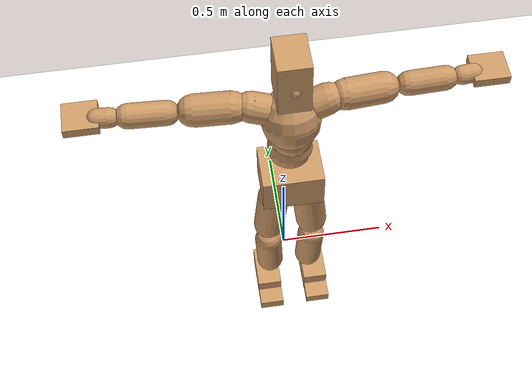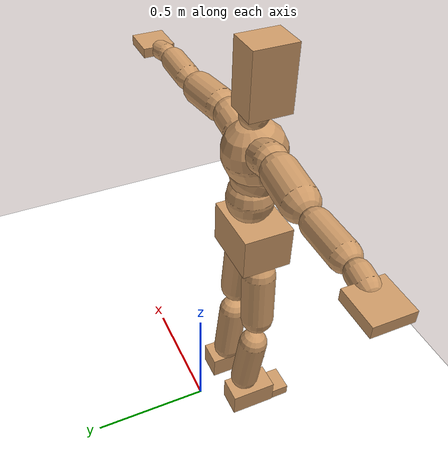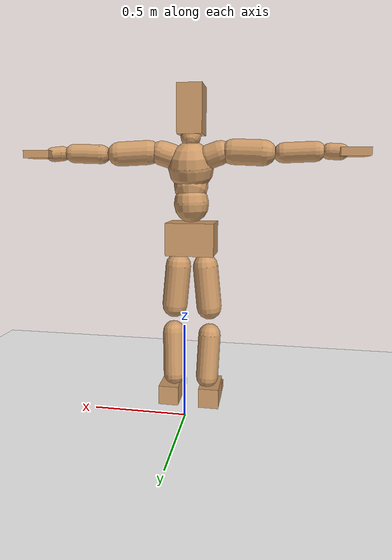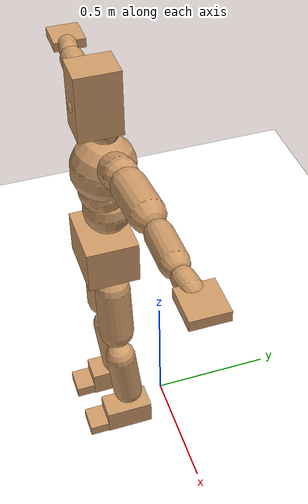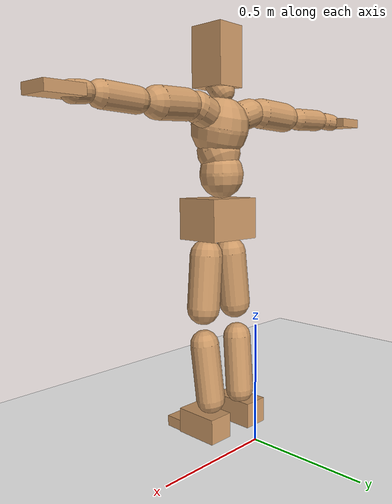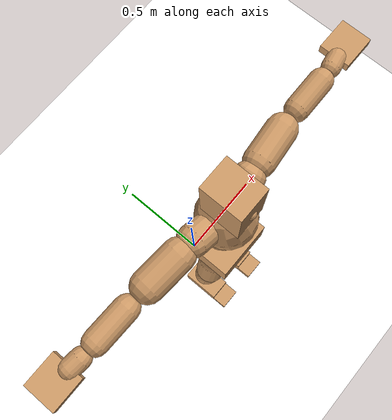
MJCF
<mujoco model="humanoid">
  <option integrator="implicitfast" />

  <visual>
    <global offwidth="1280" offheight="960" />
    <headlight active="1" ambient="0.34 0.34 0.34" diffuse="0.5 0.5 0.5" />
  </visual>

  <default>
    <joint damping="2" stiffness="2" armature="0.01" limited="true" solimplimit="0 .99 .01" />
    <geom condim="1" friction="0.7 0.005 0.0001" solimp=".99 .99 .003" solref="0.015 1" margin="0.001" rgba="0.8 0.6 .4 1" />
    <default class="smplcontact">
      <geom condim="3" friction="1. 0.005 0.0001" solref="0.015 1" solimp="0.98 0.98 0.001" priority="1" />
    </default>
    <default class="stiff_medium">
      <joint stiffness="10" />
    </default>
    <default class="stiff_medium_higher">
      <joint stiffness="50" />
    </default>
    <default class="stiff_high">
      <joint stiffness="100" />
    </default>
  </default>

  <asset>
    <texture type="skybox" builtin="gradient" rgb1="0.99 0.99 0.99" rgb2="0.608 0.828 0.892" width="100" />
    <texture builtin="flat" height="1278" mark="cross" markrgb="1 1 1" name="texgeom" random="0.01" rgb1="0.8 0.6 0.4" rgb2="0.8 0.6 0.4" type="cube" width="127" />
    <texture name="texplane" type="2d" builtin="checker" markrgb="1 1 1" rgb1="0.756 0.772 0.76" rgb2="0.6 0.6 0.6" width="100" height="100" />
    <material name="MatPlane" reflectance="0.5" texture="texplane" texrepeat="1 1" texuniform="true" />
    <material name="geom" texture="texgeom" texuniform="true" />
  </asset>

  <worldbody>
    <light name="tracking_light" pos="0 0 7" dir="0 0 -1" directional="true" cutoff="100" exponent="1" diffuse="1 1 1" specular="0.1 0.1 0.1" mode="trackcom" />
    <camera name="back" pos="0 3 2.4" xyaxes="-1 0 0 0 -1 2" mode="trackcom" />
    <camera name="side" pos="-3 0 2.4" xyaxes="0 -1 0 1 0 2" mode="trackcom" />
    <camera name="front_side" pos="-2.8 -2.8 0.8" xyaxes="0.5 -0.5 0 0.1 0.1 1" mode="trackcom" />
    <geom condim="3" name="floor" pos="0 0 0" rgba="1 1 1 1" size="100 100 .2" type="plane" material="MatPlane" />
    <body name="Pelvis" pos="-0.0018 -0.2233 0.943548" euler="90 0 0">
      <site name="Pelvis" size="0.01" />
      <freejoint name="Pelvis" />
      <geom type="box" pos="-0.0000 -0.0121 -0.0055" size="0.130676 0.0882584 0.101461" quat="1.0000 0.0000 0.0000 0.0000" density="3165.830099" name="Pelvis" />
      <body name="L_Hip" pos="0.0695 -0.0914 -0.0068">
        <joint name="L_Hip_x" type="hinge" pos="0 0 0" axis="1 0 0" stiffness="10" range="-160.0 22.92" class="stiff_medium" damping="15" />
        <joint name="L_Hip_y" type="hinge" pos="0 0 0" axis="0 1 0" stiffness="10" range="-70.0 70.0" class="stiff_medium" damping="10" />
        <joint name="L_Hip_z" type="hinge" pos="0 0 0" axis="0 0 1" stiffness="10" range="-28.65 90.0" class="stiff_medium" damping="10" />
        <geom type="capsule" density="2040.816327" fromto="0.0069 -0.075 -0.0009 0.0274 -0.3002 -0.0036" size="0.0703107" name="L_Hip" />
        <body name="L_Knee" pos="0.0343 -0.3752 -0.0045">
          <joint name="L_Knee_x" type="hinge" pos="0 0 0" axis="1 0 0" range="-5.16 171.89" damping="8" />
          <joint name="L_Knee_y" type="hinge" pos="0 0 0" axis="0 1 0" range="-4.58 6.88" damping="8" />
          <joint name="L_Knee_z" type="hinge" pos="0 0 0" axis="0 0 1" range="-6.88 4.58" damping="8" />
          <geom type="capsule" density="1234.567901" fromto="-0.0027 -0.0796 -0.0087 -0.0109 -0.3184 -0.035" size="0.0618505" name="L_Knee" />
          <body name="L_Ankle" pos="-0.0136 -0.398 -0.0437">
            <joint name="L_Ankle_x" type="hinge" pos="0 0 0" axis="1 0 0" range="-45.84 45.84" class="stiff_medium" damping="6" />
            <joint name="L_Ankle_y" type="hinge" pos="0 0 0" axis="0 1 0" range="-74.48 22.92" class="stiff_medium" damping="3" />
            <joint name="L_Ankle_z" type="hinge" pos="0 0 0" axis="0 0 1" range="-4.58 4.58" class="stiff_medium" damping="6" />
            <geom type="box" pos="0.0233 -0.0239 0.0242" size="0.0552196 0.0530474 0.0971773" quat="1.0000 0.0000 0.0000 0.0000" density="449.071558" name="L_Ankle" class="smplcontact" />
            <body name="L_Toe" pos="0.0264 -0.0558 0.1193">
              <joint name="L_Toe_x" type="hinge" pos="0 0 0" axis="1 0 0" range="-91.67 22.92" />
              <joint name="L_Toe_y" type="hinge" pos="0 0 0" axis="0 1 0" range="-4.58 4.58" />
              <joint name="L_Toe_z" type="hinge" pos="0 0 0" axis="0 0 1" range="-4.58 4.58" />
              <geom type="box" pos="-0.003 0.0055 0.0248" size="0.054648 0.0228653 0.0567058" quat="1.0000 0.0000 0.0000 0.0000" density="423.206892" name="L_Toe" class="smplcontact" />
            </body>
          </body>
        </body>
      </body>
      <body name="R_Hip" pos="-0.0677 -0.0905 -0.0043">
        <joint name="R_Hip_x" type="hinge" pos="0 0 0" axis="1 0 0" stiffness="10" range="-160.0 22.92" class="stiff_medium" damping="15" />
        <joint name="R_Hip_y" type="hinge" pos="0 0 0" axis="0 1 0" stiffness="10" range="-70.0 70.0" class="stiff_medium" damping="10" />
        <joint name="R_Hip_z" type="hinge" pos="0 0 0" axis="0 0 1" stiffness="10" range="-90.0 28.65" class="stiff_medium" damping="10" />
        <geom type="capsule" density="2040.816327" fromto="-0.0077 -0.0765 -0.0018 -0.0306 -0.3061 -0.0071" size="0.0692817" name="R_Hip" />
        <body name="R_Knee" pos="-0.0383 -0.3826 -0.0089">
          <joint name="R_Knee_x" type="hinge" pos="0 0 0" axis="1 0 0" range="-5.16 171.89" damping="8" />
          <joint name="R_Knee_y" type="hinge" pos="0 0 0" axis="0 1 0" range="-6.88 4.58" damping="8" />
          <joint name="R_Knee_z" type="hinge" pos="0 0 0" axis="0 0 1" range="-4.58 6.88" damping="8" />
          <geom type="capsule" density="1234.567901" fromto="0.0032 -0.0797 -0.0085 0.0126 -0.3187 -0.0338" size="0.0618505" name="R_Knee" />
          <body name="R_Ankle" pos="0.0158 -0.3984 -0.0423">
            <joint name="R_Ankle_x" type="hinge" pos="0 0 0" axis="1 0 0" range="-45.84 45.84" class="stiff_medium" damping="6" />
            <joint name="R_Ankle_y" type="hinge" pos="0 0 0" axis="0 1 0" range="-22.92 74.48" class="stiff_medium" damping="3" />
            <joint name="R_Ankle_z" type="hinge" pos="0 0 0" axis="0 0 1" range="-4.58 4.58" class="stiff_medium" damping="6" />
            <geom type="box" pos="-0.0212 -0.0174 0.0256" size="0.0552196 0.054648 0.0988922" quat="1.0000 0.0000 0.0000 0.0000" density="434.700981" name="R_Ankle" class="smplcontact" />
            <body name="R_Toe" pos="-0.0254 -0.0481 0.1233">
              <joint name="R_Toe_x" type="hinge" pos="0 0 0" axis="1 0 0" range="-91.67 22.92" />
              <joint name="R_Toe_y" type="hinge" pos="0 0 0" axis="0 1 0" range="-4.58 4.58" />
              <joint name="R_Toe_z" type="hinge" pos="0 0 0" axis="0 0 1" range="-4.58 4.58" />
              <geom type="box" pos="0.0042 0.0045 0.0227" size="0.0547623 0.0246945 0.0563628" quat="1.0000 0.0000 0.0000 0.0000" density="407.384095" name="R_Toe" class="smplcontact" />
            </body>
          </body>
        </body>
      </body>
      <body name="Torso" pos="-0.0025 0.109 -0.0267">
        <joint name="Torso_x" type="hinge" pos="0 0 0" axis="1 0 0" range="-25.78 57.3" class="stiff_medium" damping="15" />
        <joint name="Torso_y" type="hinge" pos="0 0 0" axis="0 1 0" range="-57.3 57.3" class="stiff_high" damping="20" />
        <joint name="Torso_z" type="hinge" pos="0 0 0" axis="0 0 1" range="-34.38 34.38" class="stiff_high" damping="20" />
        <geom type="capsule" density="2040.816327" fromto="0.0025 0.0608 0.0005 0.003 0.0743 0.0006" size="0.0940038" name="Torso" />
        <body name="Spine" pos="0.0055 0.1352 0.0011">
          <joint name="Spine_x" type="hinge" pos="0 0 0" axis="1 0 0" stiffness="10" range="-25.78 57.3" class="stiff_medium" damping="15" />
          <joint name="Spine_y" type="hinge" pos="0 0 0" axis="0 1 0" stiffness="10" range="-57.3 57.3" class="stiff_high" damping="8" />
          <joint name="Spine_z" type="hinge" pos="0 0 0" axis="0 0 1" stiffness="20" range="-34.38 34.38" class="stiff_high" damping="12" />
          <geom type="capsule" density="2040.816327" fromto="0.0007 0.0238 0.0114 0.0008 0.0291 0.014" size="0.0922924" name="Spine" />
          <body name="Chest" pos="0.0015 0.0529 0.0254">
            <joint name="Chest_x" type="hinge" pos="0 0 0" axis="1 0 0" stiffness="10" range="-25.78 57.3" class="stiff_medium" damping="15" />
            <joint name="Chest_y" type="hinge" pos="0 0 0" axis="0 1 0" stiffness="10" range="-57.3 57.3" class="stiff_high" damping="8" />
            <joint name="Chest_z" type="hinge" pos="0 0 0" axis="0 0 1" stiffness="20" range="-34.38 34.38" class="stiff_high" damping="12" />
            <geom type="capsule" density="2040.816327" fromto="-0.0009 0.0682 -0.0173 -0.001 0.0833 -0.0212" size="0.122486" name="Chest" />
            <body name="Neck" pos="-0.0028 0.2139 -0.0429">
              <joint name="Neck_x" type="hinge" pos="0 0 0" axis="1 0 0" range="-28.65 57.3" class="stiff_medium_higher" damping="10" />
              <joint name="Neck_y" type="hinge" pos="0 0 0" axis="0 1 0" range="-40.11 40.11" class="stiff_medium_higher" damping="10" />
              <joint name="Neck_z" type="hinge" pos="0 0 0" axis="0 0 1" range="-40.11 40.11" class="stiff_medium_higher" damping="10" />
              <geom type="capsule" density="1000" fromto="0.001 0.013 0.0103 0.0041 0.052 0.0411" size="0.0532973" name="Neck" />
              <body name="Head" pos="0.0052 0.065 0.0513">
                <joint name="Head_x" type="hinge" pos="0 0 0" axis="1 0 0" range="-28.65 57.3" class="stiff_medium_higher" damping="2" />
                <joint name="Head_y" type="hinge" pos="0 0 0" axis="0 1 0" range="-40.11 40.11" class="stiff_medium_higher" damping="2" />
                <joint name="Head_z" type="hinge" pos="0 0 0" axis="0 0 1" range="-40.11 40.11" class="stiff_medium_higher" damping="2" />
                <geom type="box" pos="-0.0042 0.0876 -0.0116" size="0.0662577 0.126174 0.0830955" quat="1.0000 0.0000 0.0000 0.0000" density="1018.069894" name="Head" />
                <geom type="capsule" name="nose" size="0.0218672 0.0109336" pos="0 0.07 0.05" quat="1 0 0 0" mass="0" contype="0" conaffinity="0" />
              </body>
            </body>
            <body name="L_Thorax" pos="0.0788 0.1217 -0.0341">
              <joint name="L_Thorax_x" type="hinge" pos="0 0 0" axis="1 0 0" range="-10.89 4.58" class="stiff_medium_higher" damping="20" />
              <joint name="L_Thorax_y" type="hinge" pos="0 0 0" axis="0 1 0" range="-28.65 17.19" class="stiff_medium_higher" damping="20" />
              <joint name="L_Thorax_z" type="hinge" pos="0 0 0" axis="0 0 1" range="-31.51 40.11" class="stiff_medium_higher" damping="20" />
              <geom type="capsule" density="1000" fromto="0.0182 0.0061 -0.0018 0.0728 0.0244 -0.0071" size="0.065125" name="L_Thorax" />
              <body name="L_Shoulder" pos="0.091 0.0305 -0.0089">
                <joint name="L_Shoulder_x" type="hinge" pos="0 0 0" axis="1 0 0" range="-97.4 97.4" class="stiff_medium" damping="6" />
                <joint name="L_Shoulder_y" type="hinge" pos="0 0 0" axis="0 1 0" range="-108.86 80.21" class="stiff_medium" damping="6" />
                <joint name="L_Shoulder_z" type="hinge" pos="0 0 0" axis="0 0 1" range="-97.4 85.94" class="stiff_medium" damping="6" />
                <geom type="capsule" density="1000" fromto="0.0519 -0.0026 -0.0055 0.2077 -0.0102 -0.022" size="0.064625" name="L_Shoulder" />
                <body name="L_Elbow" pos="0.2596 -0.0128 -0.0275">
                  <joint name="L_Elbow_x" type="hinge" pos="0 0 0" axis="1 0 0" range="-17.19 4.58" damping="5" />
                  <joint name="L_Elbow_y" type="hinge" pos="0 0 0" axis="0 1 0" range="-180.0 17.19" damping="5" />
                  <joint name="L_Elbow_z" type="hinge" pos="0 0 0" axis="0 0 1" range="-100.84 4.58" damping="5" />
                  <geom type="capsule" density="1000" fromto="0.0498 0.0018 -0.0002 0.1994 0.0072 -0.0009" size="0.050625" name="L_Elbow" />
                  <body name="L_Wrist" pos="0.2492 0.009 -0.0012">
                    <joint name="L_Wrist_x" type="hinge" pos="0 0 0" axis="1 0 0" range="-180.0 22.92" />
                    <joint name="L_Wrist_y" type="hinge" pos="0 0 0" axis="0 1 0" range="-17.19 17.19" />
                    <joint name="L_Wrist_z" type="hinge" pos="0 0 0" axis="0 0 1" range="-22.92 22.92" />
                    <geom type="capsule" density="1000" fromto="0.0168 -0.0016 -0.003 0.0672 -0.0065 -0.012" size="0.03975" name="L_Wrist" class="smplcontact" />
                    <body name="L_Hand" pos="0.084 -0.0082 -0.0149">
                      <joint name="L_Hand_x" type="hinge" pos="0 0 0" axis="1 0 0" range="-17.19 17.19" />
                      <joint name="L_Hand_y" type="hinge" pos="0 0 0" axis="0 1 0" range="-51.57 51.57" />
                      <joint name="L_Hand_z" type="hinge" pos="0 0 0" axis="0 0 1" range="-91.67 91.67" />
                      <geom type="box" pos="0.0493 0.001 -0.0058" size="0.073125 0.01975 0.06725" quat="1.0000 0.0000 0.0000 0.0000" density="400.552564" name="L_Hand" class="smplcontact" />
                    </body>
                  </body>
                </body>
              </body>
            </body>
            <body name="R_Thorax" pos="-0.0818 0.1188 -0.0386">
              <joint name="R_Thorax_x" type="hinge" pos="0 0 0" axis="1 0 0" range="-10.89 4.58" class="stiff_medium_higher" damping="20" />
              <joint name="R_Thorax_y" type="hinge" pos="0 0 0" axis="0 1 0" range="-17.19 28.65" class="stiff_medium_higher" damping="20" />
              <joint name="R_Thorax_z" type="hinge" pos="0 0 0" axis="0 0 1" range="-40.11 31.51" class="stiff_medium_higher" damping="20" />
              <geom type="capsule" density="1000" fromto="-0.0192 0.0065 -0.0018 -0.0768 0.026 -0.0073" size="0.063875" name="R_Thorax" />
              <body name="R_Shoulder" pos="-0.096 0.0326 -0.0091">
                <joint name="R_Shoulder_x" type="hinge" pos="0 0 0" axis="1 0 0" range="-97.4 97.4" class="stiff_medium" damping="6" />
                <joint name="R_Shoulder_y" type="hinge" pos="0 0 0" axis="0 1 0" range="-80.21 108.86" class="stiff_medium" damping="6" />
                <joint name="R_Shoulder_z" type="hinge" pos="0 0 0" axis="0 0 1" range="-85.94 97.4" class="stiff_medium" damping="6" />
                <geom type="capsule" density="1000" fromto="-0.0507 -0.0027 -0.0043 -0.203 -0.0107 -0.0171" size="0.066375" name="R_Shoulder" />
                <body name="R_Elbow" pos="-0.2537 -0.0133 -0.0214">
                  <joint name="R_Elbow_x" type="hinge" pos="0 0 0" axis="1 0 0" range="-17.19 4.58" damping="5" />
                  <joint name="R_Elbow_y" type="hinge" pos="0 0 0" axis="0 1 0" range="-17.19 180.0" damping="5" />
                  <joint name="R_Elbow_z" type="hinge" pos="0 0 0" axis="0 0 1" range="-4.58 100.84" damping="5" />
                  <geom type="capsule" density="1000" fromto="-0.0511 0.0016 -0.0011 -0.2042 0.0062 -0.0044" size="0.051" name="R_Elbow" />
                  <body name="R_Wrist" pos="-0.2553 0.0078 -0.0056">
                    <joint name="R_Wrist_x" type="hinge" pos="0 0 0" axis="1 0 0" range="-180.0 22.92" />
                    <joint name="R_Wrist_y" type="hinge" pos="0 0 0" axis="0 1 0" range="-17.19 17.19" />
                    <joint name="R_Wrist_z" type="hinge" pos="0 0 0" axis="0 0 1" range="-22.92 22.92" />
                    <geom type="capsule" density="1000" fromto="-0.0169 -0.0012 -0.0021 -0.0677 -0.0049 -0.0083" size="0.04075" name="R_Wrist" class="smplcontact" />
                    <body name="R_Hand" pos="-0.0846 -0.0061 -0.0103">
                      <joint name="R_Hand_x" type="hinge" pos="0 0 0" axis="1 0 0" range="-17.19 17.19" />
                      <joint name="R_Hand_y" type="hinge" pos="0 0 0" axis="0 1 0" range="-51.57 51.57" />
                      <joint name="R_Hand_z" type="hinge" pos="0 0 0" axis="0 0 1" range="-91.67 91.67" />
                      <geom type="box" pos="-0.0462 -0.0009 -0.0079" size="0.071125 0.0205 0.06825" quat="1.0000 0.0000 0.0000 0.0000" density="403.679611" name="R_Hand" class="smplcontact" />
                    </body>
                  </body>
                </body>
              </body>
            </body>
          </body>
        </body>
      </body>
    </body>
  </worldbody>
  <actuator>
    <general name="L_Hip_x" joint="L_Hip_x" biastype="affine" gainprm="287.33006409732246" biasprm="-215.3247604770444 -180 -2.0" ctrllimited="true" ctrlrange="-1 1" forcerange="-360 360" />
    <general name="L_Hip_y" joint="L_Hip_y" biastype="affine" gainprm="219.9114857512855" biasprm="0.0 -180 -2.0" ctrllimited="true" ctrlrange="-1 1" forcerange="-360 360" />
    <general name="L_Hip_z" joint="L_Hip_z" biastype="affine" gainprm="186.3749841742145" biasprm="96.3683546488669 -180 -2.0" ctrllimited="true" ctrlrange="-1 1" forcerange="-360 360" />
    <general name="L_Knee_x" joint="L_Knee_x" biastype="affine" gainprm="278.10948965903646" biasprm="261.8988715665131 -180 -2.0" ctrllimited="true" ctrlrange="-1 1" forcerange="-360 360" />
    <general name="L_Knee_y" joint="L_Knee_y" biastype="affine" gainprm="18.001325905069514" biasprm="3.612831551628262 -180 -2.0" ctrllimited="true" ctrlrange="-1 1" forcerange="-360 360" />
    <general name="L_Knee_z" joint="L_Knee_z" biastype="affine" gainprm="18.001325905069514" biasprm="-3.612831551628262 -180 -2.0" ctrllimited="true" ctrlrange="-1 1" forcerange="-360 360" />
    <general name="L_Ankle_x" joint="L_Ankle_x" biastype="affine" gainprm="72.00530362027807" biasprm="0.0 -90 -2.0" ctrllimited="true" ctrlrange="-1 1" forcerange="-180 180" />
    <general name="L_Ankle_y" joint="L_Ankle_y" biastype="affine" gainprm="76.49778111491148" biasprm="-40.49512930477244 -90 -2.0" ctrllimited="true" ctrlrange="-1 1" forcerange="-180 180" />
    <general name="L_Ankle_z" joint="L_Ankle_z" biastype="affine" gainprm="7.1942471767206255" biasprm="0.0 -90 -2.0" ctrllimited="true" ctrlrange="-1 1" forcerange="-180 180" />
    <general name="L_Toe_x" joint="L_Toe_x" biastype="affine" gainprm="71.99902043497087" biasprm="-43.19689898685965 -72 -0.8" ctrllimited="true" ctrlrange="-1 1" forcerange="-144 144" />
    <general name="L_Toe_y" joint="L_Toe_y" biastype="affine" gainprm="5.755397741376501" biasprm="0.0 -72 -0.8" ctrllimited="true" ctrlrange="-1 1" forcerange="-144 144" />
    <general name="L_Toe_z" joint="L_Toe_z" biastype="affine" gainprm="5.755397741376501" biasprm="0.0 -72 -0.8" ctrllimited="true" ctrlrange="-1 1" forcerange="-144 144" />
    <general name="R_Hip_x" joint="R_Hip_x" biastype="affine" gainprm="287.33006409732246" biasprm="-215.3247604770444 -180 -2.0" ctrllimited="true" ctrlrange="-1 1" forcerange="-360 360" />
    <general name="R_Hip_y" joint="R_Hip_y" biastype="affine" gainprm="219.9114857512855" biasprm="0.0 -180 -2.0" ctrllimited="true" ctrlrange="-1 1" forcerange="-360 360" />
    <general name="R_Hip_z" joint="R_Hip_z" biastype="affine" gainprm="186.3749841742145" biasprm="-96.3683546488669 -180 -2.0" ctrllimited="true" ctrlrange="-1 1" forcerange="-360 360" />
    <general name="R_Knee_x" joint="R_Knee_x" biastype="affine" gainprm="278.10948965903646" biasprm="261.8988715665131 -180 -2.0" ctrllimited="true" ctrlrange="-1 1" forcerange="-360 360" />
    <general name="R_Knee_y" joint="R_Knee_y" biastype="affine" gainprm="18.001325905069514" biasprm="-3.612831551628262 -180 -2.0" ctrllimited="true" ctrlrange="-1 1" forcerange="-360 360" />
    <general name="R_Knee_z" joint="R_Knee_z" biastype="affine" gainprm="18.001325905069514" biasprm="3.612831551628262 -180 -2.0" ctrllimited="true" ctrlrange="-1 1" forcerange="-360 360" />
    <general name="R_Ankle_x" joint="R_Ankle_x" biastype="affine" gainprm="72.00530362027807" biasprm="0.0 -90 -2.0" ctrllimited="true" ctrlrange="-1 1" forcerange="-180 180" />
    <general name="R_Ankle_y" joint="R_Ankle_y" biastype="affine" gainprm="76.49778111491148" biasprm="40.49512930477244 -90 -2.0" ctrllimited="true" ctrlrange="-1 1" forcerange="-180 180" />
    <general name="R_Ankle_z" joint="R_Ankle_z" biastype="affine" gainprm="7.1942471767206255" biasprm="0.0 -90 -2.0" ctrllimited="true" ctrlrange="-1 1" forcerange="-180 180" />
    <general name="R_Toe_x" joint="R_Toe_x" biastype="affine" gainprm="71.99902043497087" biasprm="-43.19689898685965 -72 -0.8" ctrllimited="true" ctrlrange="-1 1" forcerange="-144 144" />
    <general name="R_Toe_y" joint="R_Toe_y" biastype="affine" gainprm="5.755397741376501" biasprm="0.0 -72 -0.8" ctrllimited="true" ctrlrange="-1 1" forcerange="-144 144" />
    <general name="R_Toe_z" joint="R_Toe_z" biastype="affine" gainprm="5.755397741376501" biasprm="0.0 -72 -0.8" ctrllimited="true" ctrlrange="-1 1" forcerange="-144 144" />
    <general name="Torso_x" joint="Torso_x" biastype="affine" gainprm="174.00234510682668" biasprm="66.0153336274335 -240 -4.0" ctrllimited="true" ctrlrange="-1 1" forcerange="-360 360" />
    <general name="Torso_y" joint="Torso_y" biastype="affine" gainprm="240.0176787342602" biasprm="0.0 -240 -4.0" ctrllimited="true" ctrlrange="-1 1" forcerange="-360 360" />
    <general name="Torso_z" joint="Torso_z" biastype="affine" gainprm="144.01060724055614" biasprm="0.0 -240 -4.0" ctrllimited="true" ctrlrange="-1 1" forcerange="-360 360" />
    <general name="Spine_x" joint="Spine_x" biastype="affine" gainprm="174.00234510682668" biasprm="66.0153336274335 -240 -4.0" ctrllimited="true" ctrlrange="-1 1" forcerange="-360 360" />
    <general name="Spine_y" joint="Spine_y" biastype="affine" gainprm="240.0176787342602" biasprm="0.0 -240 -4.0" ctrllimited="true" ctrlrange="-1 1" forcerange="-360 360" />
    <general name="Spine_z" joint="Spine_z" biastype="affine" gainprm="144.01060724055614" biasprm="0.0 -240 -4.0" ctrllimited="true" ctrlrange="-1 1" forcerange="-360 360" />
    <general name="Chest_x" joint="Chest_x" biastype="affine" gainprm="174.00234510682668" biasprm="66.0153336274335 -240 -4.0" ctrllimited="true" ctrlrange="-1 1" forcerange="-360 360" />
    <general name="Chest_y" joint="Chest_y" biastype="affine" gainprm="240.0176787342602" biasprm="0.0 -240 -4.0" ctrllimited="true" ctrlrange="-1 1" forcerange="-360 360" />
    <general name="Chest_z" joint="Chest_z" biastype="affine" gainprm="144.01060724055614" biasprm="0.0 -240 -4.0" ctrllimited="true" ctrlrange="-1 1" forcerange="-360 360" />
    <general name="Neck_x" joint="Neck_x" biastype="affine" gainprm="27.00198885760427" biasprm="9.000662952534757 -36 -0.8" ctrllimited="true" ctrlrange="-1 1" forcerange="-72 72" />
    <general name="Neck_y" joint="Neck_y" biastype="affine" gainprm="25.20185626709732" biasprm="0.0 -36 -0.8" ctrllimited="true" ctrlrange="-1 1" forcerange="-72 72" />
    <general name="Neck_z" joint="Neck_z" biastype="affine" gainprm="25.20185626709732" biasprm="0.0 -36 -0.8" ctrllimited="true" ctrlrange="-1 1" forcerange="-72 72" />
    <general name="Head_x" joint="Head_x" biastype="affine" gainprm="18.001325905069514" biasprm="6.000441968356505 -24 -0.8" ctrllimited="true" ctrlrange="-1 1" forcerange="-48 48" />
    <general name="Head_y" joint="Head_y" biastype="affine" gainprm="16.801237511398213" biasprm="0.0 -24 -0.8" ctrllimited="true" ctrlrange="-1 1" forcerange="-48 48" />
    <general name="Head_z" joint="Head_z" biastype="affine" gainprm="16.801237511398213" biasprm="0.0 -24 -0.8" ctrllimited="true" ctrlrange="-1 1" forcerange="-48 48" />
    <general name="L_Thorax_x" joint="L_Thorax_x" biastype="affine" gainprm="16.200146117011364" biasprm="-6.6078165480505335 -120 -1.6" ctrllimited="true" ctrlrange="-1 1" forcerange="-240 240" />
    <general name="L_Thorax_y" joint="L_Thorax_y" biastype="affine" gainprm="48.00353574685204" biasprm="-12.00088393671301 -120 -1.6" ctrllimited="true" ctrlrange="-1 1" forcerange="-240 240" />
    <general name="L_Thorax_z" joint="L_Thorax_z" biastype="affine" gainprm="75.00028861670033" biasprm="9.00589894029074 -120 -1.6" ctrllimited="true" ctrlrange="-1 1" forcerange="-240 240" />
    <general name="L_Shoulder_x" joint="L_Shoulder_x" biastype="affine" gainprm="81.5976331892389" biasprm="0.0 -48 -1.6" ctrllimited="true" ctrlrange="-1 1" forcerange="-96 96" />
    <general name="L_Shoulder_y" joint="L_Shoulder_y" biastype="affine" gainprm="79.19745640189629" biasprm="-12.00088393671301 -48 -1.6" ctrllimited="true" ctrlrange="-1 1" forcerange="-96 96" />
    <general name="L_Shoulder_z" joint="L_Shoulder_z" biastype="affine" gainprm="76.79727961455369" biasprm="-4.800353574685214 -48 -1.6" ctrllimited="true" ctrlrange="-1 1" forcerange="-96 96" />
    <general name="L_Elbow_x" joint="L_Elbow_x" biastype="affine" gainprm="13.67849441372996" biasprm="-7.923096672353461 -72 -0.8" ctrllimited="true" ctrlrange="-1 1" forcerange="-144 144" />
    <general name="L_Elbow_y" joint="L_Elbow_y" biastype="affine" gainprm="123.89813107227425" biasprm="-102.29653998619085 -72 -0.8" ctrllimited="true" ctrlrange="-1 1" forcerange="-144 144" />
    <general name="L_Elbow_z" joint="L_Elbow_z" biastype="affine" gainprm="66.23733950828719" biasprm="-60.4819417669107 -72 -0.8" ctrllimited="true" ctrlrange="-1 1" forcerange="-144 144" />
    <general name="L_Wrist_x" joint="L_Wrist_x" biastype="affine" gainprm="21.24973270888136" biasprm="-16.449379134196157 -12 -0.8" ctrllimited="true" ctrlrange="-1 1" forcerange="-24 24" />
    <general name="L_Wrist_y" joint="L_Wrist_y" biastype="affine" gainprm="3.6002651810139037" biasprm="0.0 -12 -0.8" ctrllimited="true" ctrlrange="-1 1" forcerange="-24 24" />
    <general name="L_Wrist_z" joint="L_Wrist_z" biastype="affine" gainprm="4.800353574685205" biasprm="0.0 -12 -0.8" ctrllimited="true" ctrlrange="-1 1" forcerange="-24 24" />
    <general name="L_Hand_x" joint="L_Hand_x" biastype="affine" gainprm="3.6002651810139037" biasprm="0.0 -12 -0.8" ctrllimited="true" ctrlrange="-1 1" forcerange="-24 24" />
    <general name="L_Hand_y" joint="L_Hand_y" biastype="affine" gainprm="10.800795543041708" biasprm="0.0 -12 -0.8" ctrllimited="true" ctrlrange="-1 1" forcerange="-24 24" />
    <general name="L_Hand_z" joint="L_Hand_z" biastype="affine" gainprm="19.199319903638422" biasprm="0.0 -12 -0.8" ctrllimited="true" ctrlrange="-1 1" forcerange="-24 24" />
    <general name="R_Thorax_x" joint="R_Thorax_x" biastype="affine" gainprm="16.200146117011364" biasprm="-6.6078165480505335 -120 -1.6" ctrllimited="true" ctrlrange="-1 1" forcerange="-240 240" />
    <general name="R_Thorax_y" joint="R_Thorax_y" biastype="affine" gainprm="48.00353574685204" biasprm="12.000883936713002 -120 -1.6" ctrllimited="true" ctrlrange="-1 1" forcerange="-240 240" />
    <general name="R_Thorax_z" joint="R_Thorax_z" biastype="affine" gainprm="75.00028861670033" biasprm="-9.00589894029074 -120 -1.6" ctrllimited="true" ctrlrange="-1 1" forcerange="-240 240" />
    <general name="R_Shoulder_x" joint="R_Shoulder_x" biastype="affine" gainprm="81.5976331892389" biasprm="0.0 -48 -1.6" ctrllimited="true" ctrlrange="-1 1" forcerange="-96 96" />
    <general name="R_Shoulder_y" joint="R_Shoulder_y" biastype="affine" gainprm="79.19745640189629" biasprm="12.00088393671301 -48 -1.6" ctrllimited="true" ctrlrange="-1 1" forcerange="-96 96" />
    <general name="R_Shoulder_z" joint="R_Shoulder_z" biastype="affine" gainprm="76.79727961455369" biasprm="4.800353574685204 -48 -1.6" ctrllimited="true" ctrlrange="-1 1" forcerange="-96 96" />
    <general name="R_Elbow_x" joint="R_Elbow_x" biastype="affine" gainprm="13.67849441372996" biasprm="-7.923096672353461 -72 -0.8" ctrllimited="true" ctrlrange="-1 1" forcerange="-144 144" />
    <general name="R_Elbow_y" joint="R_Elbow_y" biastype="affine" gainprm="123.89813107227425" biasprm="102.29653998619085 -72 -0.8" ctrllimited="true" ctrlrange="-1 1" forcerange="-144 144" />
    <general name="R_Elbow_z" joint="R_Elbow_z" biastype="affine" gainprm="66.23733950828719" biasprm="60.481941766910694 -72 -0.8" ctrllimited="true" ctrlrange="-1 1" forcerange="-144 144" />
    <general name="R_Wrist_x" joint="R_Wrist_x" biastype="affine" gainprm="21.24973270888136" biasprm="-16.449379134196157 -12 -0.8" ctrllimited="true" ctrlrange="-1 1" forcerange="-24 24" />
    <general name="R_Wrist_y" joint="R_Wrist_y" biastype="affine" gainprm="3.6002651810139037" biasprm="0.0 -12 -0.8" ctrllimited="true" ctrlrange="-1 1" forcerange="-24 24" />
    <general name="R_Wrist_z" joint="R_Wrist_z" biastype="affine" gainprm="4.800353574685205" biasprm="0.0 -12 -0.8" ctrllimited="true" ctrlrange="-1 1" forcerange="-24 24" />
    <general name="R_Hand_x" joint="R_Hand_x" biastype="affine" gainprm="3.6002651810139037" biasprm="0.0 -12 -0.8" ctrllimited="true" ctrlrange="-1 1" forcerange="-24 24" />
    <general name="R_Hand_y" joint="R_Hand_y" biastype="affine" gainprm="10.800795543041708" biasprm="0.0 -12 -0.8" ctrllimited="true" ctrlrange="-1 1" forcerange="-24 24" />
    <general name="R_Hand_z" joint="R_Hand_z" biastype="affine" gainprm="19.199319903638422" biasprm="0.0 -12 -0.8" ctrllimited="true" ctrlrange="-1 1" forcerange="-24 24" />
  </actuator>
  <contact>
    <exclude body1="Torso" body2="Chest" />
    <exclude body1="Head" body2="Chest" />
    <exclude body1="R_Knee" body2="R_Toe" />
    <exclude body1="R_Knee" body2="L_Ankle" />
    <exclude body1="R_Knee" body2="L_Toe" />
    <exclude body1="L_Knee" body2="L_Toe" />
    <exclude body1="L_Knee" body2="R_Ankle" />
    <exclude body1="L_Knee" body2="R_Toe" />
    <exclude body1="L_Shoulder" body2="Chest" />
    <exclude body1="R_Shoulder" body2="Chest" />
  </contact>
  <sensor>
    <framelinvel name="sensor_Pelvis_framelinvel" objtype="xbody" objname="Pelvis" />
    <framelinvel name="sensor_L_Hip_framelinvel" objtype="xbody" objname="L_Hip" />
    <framelinvel name="sensor_L_Knee_framelinvel" objtype="xbody" objname="L_Knee" />
    <framelinvel name="sensor_L_Ankle_framelinvel" objtype="xbody" objname="L_Ankle" />
    <framelinvel name="sensor_L_Toe_framelinvel" objtype="xbody" objname="L_Toe" />
    <framelinvel name="sensor_R_Hip_framelinvel" objtype="xbody" objname="R_Hip" />
    <framelinvel name="sensor_R_Knee_framelinvel" objtype="xbody" objname="R_Knee" />
    <framelinvel name="sensor_R_Ankle_framelinvel" objtype="xbody" objname="R_Ankle" />
    <framelinvel name="sensor_R_Toe_framelinvel" objtype="xbody" objname="R_Toe" />
    <framelinvel name="sensor_Torso_framelinvel" objtype="xbody" objname="Torso" />
    <framelinvel name="sensor_Spine_framelinvel" objtype="xbody" objname="Spine" />
    <framelinvel name="sensor_Chest_framelinvel" objtype="xbody" objname="Chest" />
    <framelinvel name="sensor_Neck_framelinvel" objtype="xbody" objname="Neck" />
    <framelinvel name="sensor_Head_framelinvel" objtype="xbody" objname="Head" />
    <framelinvel name="sensor_L_Thorax_framelinvel" objtype="xbody" objname="L_Thorax" />
    <framelinvel name="sensor_L_Shoulder_framelinvel" objtype="xbody" objname="L_Shoulder" />
    <framelinvel name="sensor_L_Elbow_framelinvel" objtype="xbody" objname="L_Elbow" />
    <framelinvel name="sensor_L_Wrist_framelinvel" objtype="xbody" objname="L_Wrist" />
    <framelinvel name="sensor_L_Hand_framelinvel" objtype="xbody" objname="L_Hand" />
    <framelinvel name="sensor_R_Thorax_framelinvel" objtype="xbody" objname="R_Thorax" />
    <framelinvel name="sensor_R_Shoulder_framelinvel" objtype="xbody" objname="R_Shoulder" />
    <framelinvel name="sensor_R_Elbow_framelinvel" objtype="xbody" objname="R_Elbow" />
    <framelinvel name="sensor_R_Wrist_framelinvel" objtype="xbody" objname="R_Wrist" />
    <framelinvel name="sensor_R_Hand_framelinvel" objtype="xbody" objname="R_Hand" />
    <frameangvel name="sensor_Pelvis_frameangvel" objtype="xbody" objname="Pelvis" />
    <frameangvel name="sensor_L_Hip_frameangvel" objtype="xbody" objname="L_Hip" />
    <frameangvel name="sensor_L_Knee_frameangvel" objtype="xbody" objname="L_Knee" />
    <frameangvel name="sensor_L_Ankle_frameangvel" objtype="xbody" objname="L_Ankle" />
    <frameangvel name="sensor_L_Toe_frameangvel" objtype="xbody" objname="L_Toe" />
    <frameangvel name="sensor_R_Hip_frameangvel" objtype="xbody" objname="R_Hip" />
    <frameangvel name="sensor_R_Knee_frameangvel" objtype="xbody" objname="R_Knee" />
    <frameangvel name="sensor_R_Ankle_frameangvel" objtype="xbody" objname="R_Ankle" />
    <frameangvel name="sensor_R_Toe_frameangvel" objtype="xbody" objname="R_Toe" />
    <frameangvel name="sensor_Torso_frameangvel" objtype="xbody" objname="Torso" />
    <frameangvel name="sensor_Spine_frameangvel" objtype="xbody" objname="Spine" />
    <frameangvel name="sensor_Chest_frameangvel" objtype="xbody" objname="Chest" />
    <frameangvel name="sensor_Neck_frameangvel" objtype="xbody" objname="Neck" />
    <frameangvel name="sensor_Head_frameangvel" objtype="xbody" objname="Head" />
    <frameangvel name="sensor_L_Thorax_frameangvel" objtype="xbody" objname="L_Thorax" />
    <frameangvel name="sensor_L_Shoulder_frameangvel" objtype="xbody" objname="L_Shoulder" />
    <frameangvel name="sensor_L_Elbow_frameangvel" objtype="xbody" objname="L_Elbow" />
    <frameangvel name="sensor_L_Wrist_frameangvel" objtype="xbody" objname="L_Wrist" />
    <frameangvel name="sensor_L_Hand_frameangvel" objtype="xbody" objname="L_Hand" />
    <frameangvel name="sensor_R_Thorax_frameangvel" objtype="xbody" objname="R_Thorax" />
    <frameangvel name="sensor_R_Shoulder_frameangvel" objtype="xbody" objname="R_Shoulder" />
    <frameangvel name="sensor_R_Elbow_frameangvel" objtype="xbody" objname="R_Elbow" />
    <frameangvel name="sensor_R_Wrist_frameangvel" objtype="xbody" objname="R_Wrist" />
    <frameangvel name="sensor_R_Hand_frameangvel" objtype="xbody" objname="R_Hand" />
    <subtreelinvel name="Chest_subtreelinvel" body="Chest" />
    <gyro name="Pelvis_gyro" site="Pelvis" />
  </sensor>
</mujoco>
